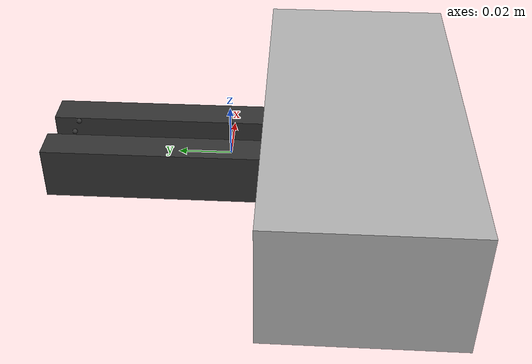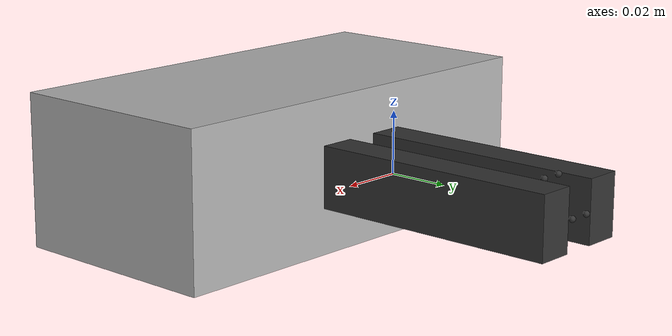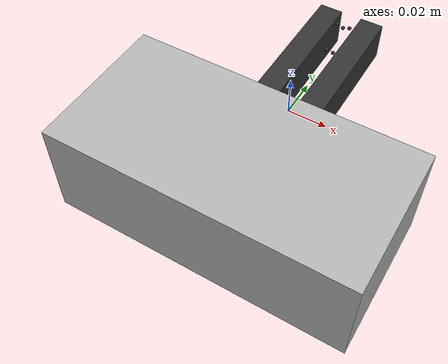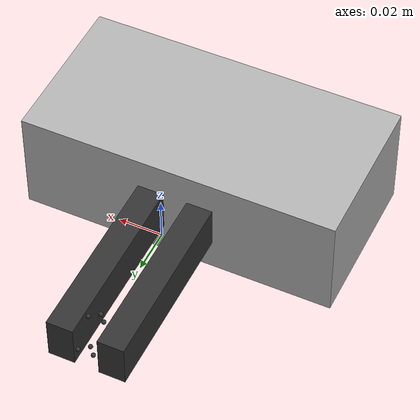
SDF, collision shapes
<!-- This sdf file is based on schunk_wsg_50.sdf -->
<?xml version="1.0"?>
<sdf version="1.7">
  <model name="Schunk_Gripper">
    <link name='world'></link>
    <link name='body_on_x'></link>
    <link name='body_on_y'></link>
    <joint name="world_x_joint" type="prismatic">
      <parent>world</parent>
      <child>body_on_x</child>
      <axis>
        <xyz>1 0 0</xyz>
        <!-- Drake attaches an actuator to all and only joints with a nonzero
             effort limit. -->
        <limit>
          <lower>-0.5</lower>
          <upper>0.5</upper>
          <effort>80</effort>
          <stiffness>15000</stiffness>
          <dissipation>50</dissipation>
        </limit>
        <dynamics>
          <spring_reference>0</spring_reference>
          <spring_stiffness>0</spring_stiffness>
          <damping>0</damping>
          <friction>0</friction>
        </dynamics>
      </axis>
      <physics>
        <ode>
          <limit>
            <cfm>0</cfm>
            <erp>0.2</erp>
          </limit>
          <suspension>
            <cfm>0</cfm>
            <erp>0.2</erp>
          </suspension>
        </ode>
      </physics>
    </joint>
    <joint name="world_y_joint" type="prismatic">
      <parent>body_on_x</parent>
      <child>body_on_y</child>
      <axis>
        <xyz>0 0 1</xyz>
        <!-- Drake attaches an actuator to all and only joints with a nonzero
             effort limit. -->
        <limit>
          <lower>-0.5</lower>
          <upper>0.5</upper>
          <effort>80</effort>
          <stiffness>15000</stiffness>
          <dissipation>50</dissipation>
        </limit>
        <dynamics>
          <spring_reference>0</spring_reference>
          <spring_stiffness>0</spring_stiffness>
          <damping>0</damping>
          <friction>0</friction>
        </dynamics>
      </axis>
      <physics>
        <ode>
          <limit>
            <cfm>0</cfm>
            <erp>0.2</erp>
          </limit>
          <suspension>
            <cfm>0</cfm>
            <erp>0.2</erp>
          </suspension>
        </ode>
      </physics>
    </joint>
    <joint name="world_z_joint" type="prismatic">
      <parent>body_on_y</parent>
      <child>body</child>
      <axis>
        <xyz>0 1 0</xyz>
        <!-- Drake attaches an actuator to all and only joints with a nonzero
             effort limit. -->
        <limit>
          <lower>-0.5</lower>
          <upper>0.5</upper>
          <effort>80</effort>
          <stiffness>15000</stiffness>
          <dissipation>50</dissipation>
        </limit>
        <dynamics>
          <spring_reference>0</spring_reference>
          <spring_stiffness>0</spring_stiffness>
          <damping>0</damping>
          <friction>0</friction>
        </dynamics>
      </axis>
      <physics>
        <ode>
          <limit>
            <cfm>0</cfm>
            <erp>0.2</erp>
          </limit>
          <suspension>
            <cfm>0</cfm>
            <erp>0.2</erp>
          </suspension>
        </ode>
      </physics>
    </joint>
    <link name="body">
      <pose>0 -0.049133 0 0 0 0</pose>
      <inertial>
        <mass>0.988882</mass>
        <inertia>
          <ixx>0.162992</ixx>
          <ixy>0</ixy>
          <ixz>0</ixz>
          <iyy>0.162992</iyy>
          <iyz>0</iyz>
          <izz>0.164814</izz>
        </inertia>
      </inertial>
      <self_collide>0</self_collide>
      <kinematic>0</kinematic>
      <visual name="visual">
        <geometry>
          <mesh>
            <scale>1 1 1</scale>
            <uri>../meshes/wsg_body.obj</uri>
          </mesh>
        </geometry>
        <material>
          <diffuse>0.7 0.7 0.7 1</diffuse>
        </material>
      </visual>
      <collision name="collision">
        <laser_retro>0</laser_retro>
        <max_contacts>10</max_contacts>
        <geometry>
          <box>
            <size>0.146 0.0725 0.05</size>
          </box>
        </geometry>
        <surface>
          <friction>
            <ode>
              <mu>1</mu>
              <mu2>1</mu2>
              <fdir1>0 0 0</fdir1>
              <slip1>0</slip1>
              <slip2>0</slip2>
            </ode>
            <torsional>
              <coefficient>1</coefficient>
              <patch_radius>0</patch_radius>
              <surface_radius>0</surface_radius>
              <use_patch_radius>1</use_patch_radius>
              <ode>
                <slip>0</slip>
              </ode>
            </torsional>
          </friction>
          <bounce>
            <restitution_coefficient>0</restitution_coefficient>
            <threshold>1e+06</threshold>
          </bounce>
          <contact>
            <collide_without_contact>0</collide_without_contact>
            <collide_without_contact_bitmask>1</collide_without_contact_bitmask>
            <collide_bitmask>1</collide_bitmask>
            <ode>
              <soft_cfm>0</soft_cfm>
              <soft_erp>0.2</soft_erp>
              <kp>1e+13</kp>
              <kd>1</kd>
              <max_vel>0.01</max_vel>
              <min_depth>0</min_depth>
            </ode>
            <bullet>
              <split_impulse>1</split_impulse>
              <split_impulse_penetration_threshold>-0.01</split_impulse_penetration_threshold>
              <soft_cfm>0</soft_cfm>
              <soft_erp>0.2</soft_erp>
              <kp>1e+13</kp>
              <kd>1</kd>
            </bullet>
          </contact>
        </surface>
      </collision>
    </link>
    <frame name="body_frame">
      <pose relative_to="body"/>
    </frame>
    <link name="left_finger">
      <pose>-0.0115 0.028 0 0 3.141592 0</pose>
      <inertial>
        <mass>0.05</mass>
        <inertia>
          <ixx>0.16</ixx>
          <ixy>0</ixy>
          <ixz>0</ixz>
          <iyy>0.16</iyy>
          <iyz>0</iyz>
          <izz>0.16</izz>
        </inertia>
      </inertial>
      <self_collide>0</self_collide>
      <kinematic>0</kinematic>
      <visual name="visual">
        <geometry>
          <mesh>
            <scale>1 1 1</scale>
            <uri>../meshes/finger_with_tip.obj</uri>
          </mesh>
        </geometry>
        <material>
          <diffuse>0.2 0.2 0.2 1</diffuse>
        </material>
      </visual>
      <collision name="left_top">
	<pose> -0.008 0.021 0 0 0 0 </pose>
	<geometry>
	  <sphere>
            <radius> 0.001 </radius>
          </sphere>
        </geometry>
      </collision>
      <collision name="left_bottom">
	<pose> -0.008 0.041 0 0 0 0 </pose>
	<geometry>
	  <sphere>
            <radius> 0.001 </radius>
          </sphere>
        </geometry>
      </collision>
      <collision name="left_left">
	<pose> -0.008 0.031 -0.01 0 0 0 </pose>
	<geometry>
	  <sphere>
            <radius> 0.001 </radius>
          </sphere>
        </geometry>
      </collision>
      <collision name="left_right">
	<pose> -0.008 0.031 0.01 0 0 0 </pose>
	<geometry>
	  <sphere>
            <radius> 0.001 </radius>
          </sphere>
        </geometry>
      </collision>
      <collision name="collision">
        <laser_retro>0</laser_retro>
        <max_contacts>10</max_contacts>
        <geometry>
          <box>
            <size>0.012 0.082 0.02</size>
          </box>
        </geometry>
        <surface>
          <friction>
            <ode>
              <mu>1</mu>
              <mu2>1</mu2>
              <fdir1>0 0 0</fdir1>
              <slip1>0</slip1>
              <slip2>0</slip2>
            </ode>
            <torsional>
              <coefficient>1</coefficient>
              <patch_radius>0</patch_radius>
              <surface_radius>0</surface_radius>
              <use_patch_radius>1</use_patch_radius>
              <ode>
                <slip>0</slip>
              </ode>
            </torsional>
          </friction>
          <bounce>
            <restitution_coefficient>0</restitution_coefficient>
            <threshold>1e+06</threshold>
          </bounce>
          <contact>
            <collide_without_contact>0</collide_without_contact>
            <collide_without_contact_bitmask>1</collide_without_contact_bitmask>
            <collide_bitmask>1</collide_bitmask>
            <ode>
              <soft_cfm>0</soft_cfm>
              <soft_erp>0.2</soft_erp>
              <kp>1e+13</kp>
              <kd>1</kd>
              <max_vel>0.01</max_vel>
              <min_depth>0</min_depth>
            </ode>
            <bullet>
              <split_impulse>1</split_impulse>
              <split_impulse_penetration_threshold>-0.01</split_impulse_penetration_threshold>
              <soft_cfm>0</soft_cfm>
              <soft_erp>0.2</soft_erp>
              <kp>1e+13</kp>
              <kd>1</kd>
            </bullet>
          </contact>
        </surface>
      </collision>
    </link>
    <link name="right_finger">
      <pose>0.0115 0.028 0 0 0 0</pose>
      <inertial>
        <mass>0.05</mass>
        <inertia>
          <ixx>0.16</ixx>
          <ixy>0</ixy>
          <ixz>0</ixz>
          <iyy>0.16</iyy>
          <iyz>0</iyz>
          <izz>0.16</izz>
        </inertia>
      </inertial>
      <self_collide>0</self_collide>
      <kinematic>0</kinematic>
      <visual name="visual">
        <geometry>
          <mesh>
            <scale>1 1 1</scale>
            <uri>../meshes/finger_with_tip.obj</uri>
          </mesh>
        </geometry>
        <material>
          <diffuse>0.2 0.2 0.2 1</diffuse>
        </material>
      </visual>
      <collision name="right_top">
	<pose> -0.008 0.021 0 0 0 0 </pose>
	<geometry>
	  <sphere>
            <radius> 0.001 </radius>
          </sphere>
        </geometry>
      </collision>
      <collision name="right_bottom">
	<pose> -0.008 0.041 0 0 0 0 </pose>
	<geometry>
	  <sphere>
            <radius> 0.001 </radius>
          </sphere>
        </geometry>
      </collision>
      <collision name="right_left">
	<pose> -0.008 0.031 -0.01 0 0 0 </pose>
	<geometry>
	  <sphere>
            <radius> 0.001 </radius>
          </sphere>
        </geometry>
      </collision>
      <collision name="right_right">
	<pose> -0.008 0.031 0.01 0 0 0 </pose>
	<geometry>
	  <sphere>
            <radius> 0.001 </radius>
          </sphere>
        </geometry>
      </collision>
      <collision name="collision">
        <laser_retro>0</laser_retro>
        <max_contacts>10</max_contacts>
        <geometry>
          <box>
            <size>0.012 0.082 0.02</size>
          </box>
        </geometry>
        <surface>
          <friction>
            <ode>
              <mu>1</mu>
              <mu2>1</mu2>
              <fdir1>0 0 0</fdir1>
              <slip1>0</slip1>
              <slip2>0</slip2>
            </ode>
            <torsional>
              <coefficient>1</coefficient>
              <patch_radius>0</patch_radius>
              <surface_radius>0</surface_radius>
              <use_patch_radius>1</use_patch_radius>
              <ode>
                <slip>0</slip>
              </ode>
            </torsional>
          </friction>
          <bounce>
            <restitution_coefficient>0</restitution_coefficient>
            <threshold>1e+06</threshold>
          </bounce>
          <contact>
            <collide_without_contact>0</collide_without_contact>
            <collide_without_contact_bitmask>1</collide_without_contact_bitmask>
            <collide_bitmask>1</collide_bitmask>
            <ode>
              <soft_cfm>0</soft_cfm>
              <soft_erp>0.2</soft_erp>
              <kp>1e+13</kp>
              <kd>1</kd>
              <max_vel>0.01</max_vel>
              <min_depth>0</min_depth>
            </ode>
            <bullet>
              <split_impulse>1</split_impulse>
              <split_impulse_penetration_threshold>-0.01</split_impulse_penetration_threshold>
              <soft_cfm>0</soft_cfm>
              <soft_erp>0.2</soft_erp>
              <kp>1e+13</kp>
              <kd>1</kd>
            </bullet>
          </contact>
        </surface>
      </collision>
    </link>
    <joint name="left_finger_sliding_joint" type="prismatic">
      <parent>body</parent>
      <child>left_finger</child>
      <axis>
        <xyz>-1 0 0</xyz>
        <!-- Drake attaches an actuator to all and only joints with a nonzero
             effort limit. -->
        <limit>
          <lower>-0.055</lower>
          <upper>0</upper>
          <effort>80</effort>
          <stiffness>15000</stiffness>
          <dissipation>50</dissipation>
        </limit>
        <dynamics>
          <spring_reference>0</spring_reference>
          <spring_stiffness>0</spring_stiffness>
          <damping>0</damping>
          <friction>0</friction>
        </dynamics>
      </axis>
      <physics>
        <ode>
          <limit>
            <cfm>0</cfm>
            <erp>0.2</erp>
          </limit>
          <suspension>
            <cfm>0</cfm>
            <erp>0.2</erp>
          </suspension>
        </ode>
      </physics>
    </joint>
    <joint name="right_finger_sliding_joint" type="prismatic">
      <parent>body</parent>
      <child>right_finger</child>
      <axis>
        <xyz>1 0 0</xyz>
        <!-- Drake attaches an actuator to all and only joints with a nonzero
             effort limit. -->
        <limit>
          <lower>0</lower>
          <upper>0.055</upper>
          <effort>80</effort>
          <stiffness>15000</stiffness>
          <dissipation>50</dissipation>
        </limit>
        <dynamics>
          <spring_reference>0</spring_reference>
          <spring_stiffness>0</spring_stiffness>
          <damping>0</damping>
          <friction>0</friction>
        </dynamics>
      </axis>
      <physics>
        <ode>
          <limit>
            <cfm>0</cfm>
            <erp>0.2</erp>
          </limit>
          <suspension>
            <cfm>0</cfm>
            <erp>0.2</erp>
          </suspension>
        </ode>
      </physics>
    </joint>
    <static>0</static>
    <allow_auto_disable>1</allow_auto_disable>
  </model>
</sdf>
